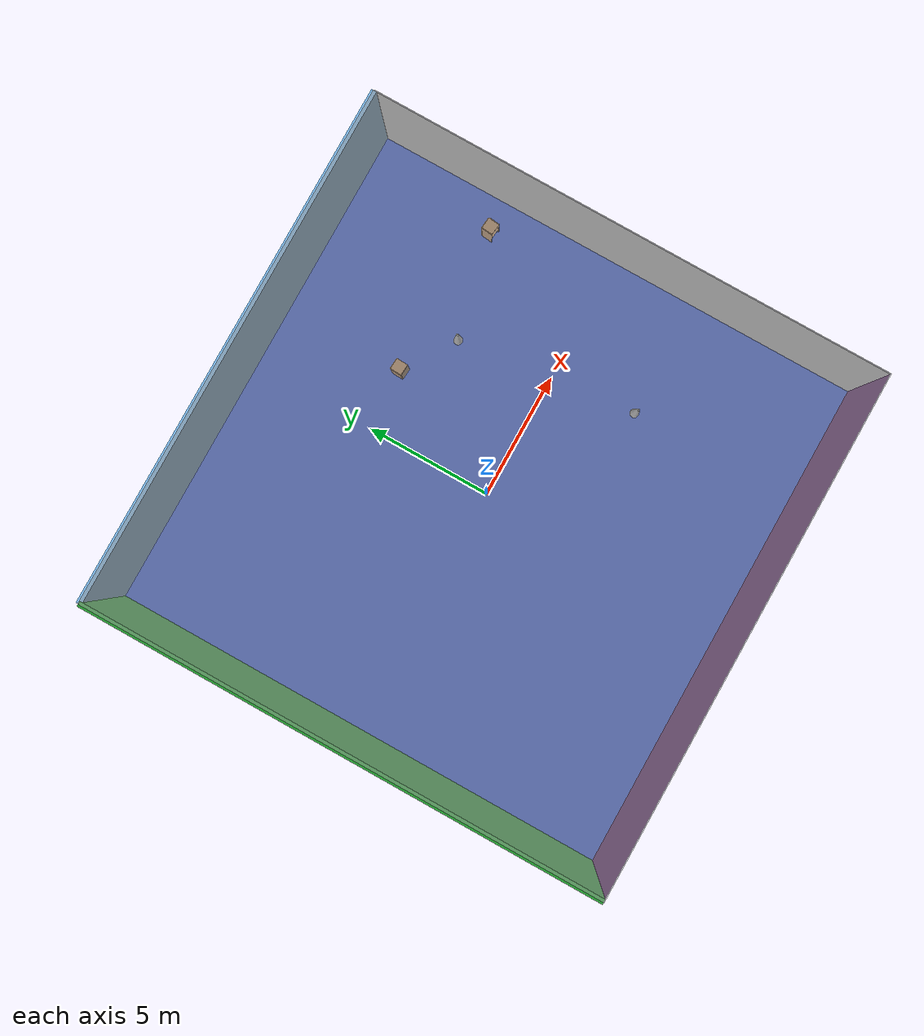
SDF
<sdf version="1.4">
 <world name="default">
  <physics type="ode">
   <max_step_size>0.001</max_step_size>
   <real_time_factor>1</real_time_factor>
   <real_time_update_rate>1000</real_time_update_rate>
   <gravity>0 0 -9.8</gravity>
  </physics>
  <scene><ambient>0.4 0.4 0.4 1</ambient><background>0.7 0.7 0.7 1</background><shadows>1</shadows></scene>
  <model name="Surrounding">
   <static>1</static>
   <link name="Ceiling">
    <collision name="Ceiling_Collision"><geometry><box><size>20 20 0.1</size></box></geometry></collision>
    <visual name="Ceiling_Visual">
     <geometry><box><size>20 20 0.1</size></box></geometry>
     <material>
      <script><uri>file://media/materials/scripts/gazebo.material</uri><name>Gazebo/GreyTransparent</name></script>
     </material>
    </visual>
    <pose>0 0 4.05 0 0 0</pose>
   </link>
   <link name="Wall_South">
    <collision name="Wall_South_Collision">
     <geometry><box><size>20 0 4</size></box></geometry>
     <pose>0 0 2 0 -0 0</pose>
    </collision>
    <visual name="Wall_South_Visual">
     <pose>0 0 2 0 -0 0</pose>
     <geometry><box><size>20 0 4</size></box></geometry>
     <material>
      <script><uri>file://media/materials/scripts/gazebo.material</uri><name>Gazebo/PurpleGlow</name></script>
     </material>
    </visual>
    <velocity_decay><linear>0</linear><angular>0</angular></velocity_decay>
    <pose>0 -10 0 0 -0 0</pose>
   </link>
   <link name="Wall_East">
    <collision name="Wall_21_Collision">
     <geometry><box><size>20 0 4</size></box></geometry>
     <pose>0 0 2 0 -0 0</pose>
    </collision>
    <visual name="Wall_21_Visual">
     <pose>0 0 2 0 -0 0</pose>
     <geometry><box><size>20 0 4</size></box></geometry>
     <material>
      <script><uri>file://media/materials/scripts/gazebo.material</uri><name>Gazebo/JointAnchor</name></script>
     </material>
    </visual>
    <velocity_decay><linear>0</linear><angular>0</angular></velocity_decay>
    <pose>10 0 0 0 -0 1.5708</pose>
   </link>
   <link name="Wall_North">
    <collision name="Wall_22_Collision">
     <geometry><box><size>20 0.2 4</size></box></geometry>
     <pose>0 0 2 0 -0 0</pose>
    </collision>
    <visual name="Wall_22_Visual">
     <pose>0 0 2 0 -0 0</pose>
     <geometry><box><size>20 0.2 4</size></box></geometry>
     <material>
      <script><uri>file://media/materials/scripts/gazebo.material</uri><name>Gazebo/SkyBlue</name></script>
     </material>
    </visual>
    <velocity_decay><linear>0</linear><angular>0</angular></velocity_decay>
    <pose>0 10 0 0 -0 0</pose>
   </link>
   <link name="Wall_West">
    <collision name="Wall_23_Collision">
     <geometry><box><size>20 0.2 4</size></box></geometry>
     <pose>0 0 2 0 -0 0</pose>
    </collision>
    <visual name="Wall_23_Visual">
     <pose>0 0 2 0 -0 0</pose>
     <geometry><box><size>20 0.2 4</size></box></geometry>
     <material>
      <script><uri>file://media/materials/scripts/gazebo.material</uri><name>Gazebo/Green</name></script>
     </material>
    </visual>
    <velocity_decay><linear>0</linear><angular>0</angular></velocity_decay>
    <pose>-10 0 0 0 0 -1.5708</pose>
   </link>
   <link name="Ground_link">
    <collision name="collision">
     <pose>0 0 .05 0 -0 0</pose>
     <geometry><box><size>20 20 0.1</size></box></geometry>
    </collision>
    <visual name="visual">
     <pose>0 0 .05 0 -0 0</pose>
     <geometry><box><size>20 20 0.1</size></box></geometry>
     <material>
      <script><uri>file://media/materials/scripts/gazebo.material</uri><name>Gazebo/BlueGlow</name></script>
     </material>
    </visual>
   </link>
   <static>1</static>
  </model>
  <spherical_coordinates>
   <surface_model>EARTH_WGS84</surface_model>
   <latitude_deg>0</latitude_deg>
   <longitude_deg>0</longitude_deg>
   <elevation>0</elevation>
   <heading_deg>0</heading_deg>
  </spherical_coordinates>
  <light name="lightball_0" type="diffuse">
   <diffuse>0.8 0.8 0.8 1</diffuse>
   <specular>0.2 0.2 0.2 1</specular>
   <attenuation>
    <range>100</range>
    <constant>0.7</constant>
    <linear>0.01</linear>
    <quadratic>0.001</quadratic>
   </attenuation>
   <direction>-0.5 0.1 -0.9</direction>
   <pose>-0.571490933094 6.2366848161 3.17068874883 0 0 0</pose>
  </light>
  <light name="lightball_1" type="diffuse">
   <diffuse>0.8 0.8 0.8 1</diffuse>
   <specular>0.2 0.2 0.2 1</specular>
   <attenuation>
    <range>100</range>
    <constant>0.7</constant>
    <linear>0.01</linear>
    <quadratic>0.001</quadratic>
   </attenuation>
   <direction>-0.5 0.1 -0.9</direction>
   <pose>-9.2775111917 -4.0624288436 1.20085991446 0 0 0</pose>
  </light>
  <light name="lightball_2" type="diffuse">
   <diffuse>0.8 0.8 0.8 1</diffuse>
   <specular>0.2 0.2 0.2 1</specular>
   <attenuation>
    <range>100</range>
    <constant>0.7</constant>
    <linear>0.01</linear>
    <quadratic>0.001</quadratic>
   </attenuation>
   <direction>-0.5 0.1 -0.9</direction>
   <pose>8.8265423114 -6.14874824718 1.43915006147 0 0 0</pose>
  </light>
  <light name="lightball_3" type="diffuse">
   <diffuse>0.8 0.8 0.8 1</diffuse>
   <specular>0.2 0.2 0.2 1</specular>
   <attenuation>
    <range>100</range>
    <constant>0.7</constant>
    <linear>0.01</linear>
    <quadratic>0.001</quadratic>
   </attenuation>
   <direction>-0.5 0.1 -0.9</direction>
   <pose>7.44857844995 -7.25183162307 0.704656676365 0 0 0</pose>
  </light>
  <light name="lightball_4" type="diffuse">
   <diffuse>0.8 0.8 0.8 1</diffuse>
   <specular>0.2 0.2 0.2 1</specular>
   <attenuation>
    <range>100</range>
    <constant>0.7</constant>
    <linear>0.01</linear>
    <quadratic>0.001</quadratic>
   </attenuation>
   <direction>-0.5 0.1 -0.9</direction>
   <pose>-8.87787953298 1.86556669602 1.70900282741 0 0 0</pose>
  </light>
  <light name="lightball_5" type="diffuse">
   <diffuse>0.8 0.8 0.8 1</diffuse>
   <specular>0.2 0.2 0.2 1</specular>
   <attenuation>
    <range>100</range>
    <constant>0.7</constant>
    <linear>0.01</linear>
    <quadratic>0.001</quadratic>
   </attenuation>
   <direction>-0.5 0.1 -0.9</direction>
   <pose>-4.9646399201 -8.98602008651 1.04122736537 0 0 0</pose>
  </light>
  <light name="lightball_6" type="diffuse">
   <diffuse>0.8 0.8 0.8 1</diffuse>
   <specular>0.2 0.2 0.2 1</specular>
   <attenuation>
    <range>100</range>
    <constant>0.7</constant>
    <linear>0.01</linear>
    <quadratic>0.001</quadratic>
   </attenuation>
   <direction>-0.5 0.1 -0.9</direction>
   <pose>-2.81846743924 -6.41172833022 3.18214804808 0 0 0</pose>
  </light>
  <light name="lightball_7" type="diffuse">
   <diffuse>0.8 0.8 0.8 1</diffuse>
   <specular>0.2 0.2 0.2 1</specular>
   <attenuation>
    <range>100</range>
    <constant>0.7</constant>
    <linear>0.01</linear>
    <quadratic>0.001</quadratic>
   </attenuation>
   <direction>-0.5 0.1 -0.9</direction>
   <pose>-2.55376670777 -9.01530387715 2.46134370721 0 0 0</pose>
  </light>
  <light name="lightball_8" type="diffuse">
   <diffuse>0.8 0.8 0.8 1</diffuse>
   <specular>0.2 0.2 0.2 1</specular>
   <attenuation>
    <range>100</range>
    <constant>0.7</constant>
    <linear>0.01</linear>
    <quadratic>0.001</quadratic>
   </attenuation>
   <direction>-0.5 0.1 -0.9</direction>
   <pose>5.89135170989 -3.22941636117 1.71206644546 0 0 0</pose>
  </light>
  <light name="lightball_9" type="diffuse">
   <diffuse>0.8 0.8 0.8 1</diffuse>
   <specular>0.2 0.2 0.2 1</specular>
   <attenuation>
    <range>100</range>
    <constant>0.7</constant>
    <linear>0.01</linear>
    <quadratic>0.001</quadratic>
   </attenuation>
   <direction>-0.5 0.1 -0.9</direction>
   <pose>-6.11829974011 -4.16902780651 3.51582654423 0 0 0</pose>
  </light>
  <light name="lightball_10" type="diffuse">
   <diffuse>0.8 0.8 0.8 1</diffuse>
   <specular>0.2 0.2 0.2 1</specular>
   <attenuation>
    <range>100</range>
    <constant>0.7</constant>
    <linear>0.01</linear>
    <quadratic>0.001</quadratic>
   </attenuation>
   <direction>-0.5 0.1 -0.9</direction>
   <pose>-5.15587036674 -6.3895202132 3.34593212743 0 0 0</pose>
  </light>
  <include><uri>model://cabinet</uri><pose>2.4755113069 5.07105062022 0 0 0 3.07586659351</pose></include>
  <include>
   <uri>model://construction_cone</uri>
   <pose>5.35483896127 -3.3785227587 0 0 0 0.326998264542</pose>
  </include>
  <include>
   <uri>model://construction_cone</uri>
   <pose>4.53524720255 3.75603689063 0 0 0 2.46893390934</pose>
  </include>
  <include><uri>model://cabinet</uri><pose>8.69035497955 4.68572040934 0 0 0 1.4632075257</pose></include>
 </world>
</sdf>

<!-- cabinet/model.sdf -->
<sdf version="1.5">
  <model name="cabinet">
    <static>true</static>
    <link name="cabinet_bottom_plate">
      <inertial>
        <pose>0 0 -1 0 0 0</pose>
        <inertia>
          <ixx>2.050000</ixx>
          <ixy>0</ixy>
          <ixz>0</ixz>
          <iyy>2.050000</iyy>
          <iyz>0</iyz>
          <izz>2.050000</izz>
        </inertia>
        <mass>25.000000</mass>
      </inertial>
      <collision name="cabinet_bottom_plate_geom">
        <pose>0 0 0.010000 0 0 0</pose>
        <geometry>
          <box>
            <size>0.450000 0.450000 0.020000</size>
          </box>
        </geometry>
      </collision>
      <visual name="cabinet_bottom_plate_geom_visual">
        <pose>0 0 0.010000 0 0 0</pose>
        <geometry>
          <box>
            <size>0.450000 0.450000 0.020000</size>
          </box>
        </geometry>
        <material>
          <script>
            <uri>model://media/materials/scripts/gazebo.material</uri>
            <name>Gazebo/Wood</name>
          </script>
        </material>
      </visual>
      <collision name="cabinet_bottom_plate_geom_cabinet_back_plate">
        <pose>0.235000 0 0.510000 0 0 0</pose>
        <geometry>
          <box>
            <size>0.020000 0.450000 1.020000</size>
          </box>
        </geometry>
      </collision>
      <visual name="cabinet_bottom_plate_geom_cabinet_back_plate_visual">
        <pose>0.235000 0 0.510000 0 0 0</pose>
        <geometry>
          <box>
            <size>0.020000 0.450000 1.020000</size>
          </box>
        </geometry>
        <material>
          <script>
            <uri>model://media/materials/scripts/gazebo.material</uri>
            <name>Gazebo/Wood</name>
          </script>
        </material>
      </visual>
      <collision name="cabinet_bottom_plate_geom_cabinet_left_plate">
        <pose>0 0.235000 0.510000 0 0 0</pose>
        <geometry>
          <box>
            <size>0.450000 0.020000 1.020000</size>
          </box>
        </geometry>
      </collision>
      <visual name="cabinet_bottom_plate_geom_cabinet_left_plate_visual">
        <pose>0 0.235000 0.510000 0 0 0</pose>
        <geometry>
          <box>
            <size>0.450000 0.020000 1.020000</size>
          </box>
        </geometry>
        <material>
          <script>
            <uri>model://media/materials/scripts/gazebo.material</uri>
            <name>Gazebo/Wood</name>
          </script>
        </material>
      </visual>
      <collision name="cabinet_bottom_plate_geom_cabinet_middle_plate">
        <pose>0 0 0.510000 0 0 0</pose>
        <geometry>
          <box>
            <size>0.450000 0.450000 0.020000</size>
          </box>
        </geometry>
      </collision>
      <visual name="cabinet_bottom_plate_geom_cabinet_middle_plate_visual">
        <pose>0 0 0.510000 0 0 0</pose>
        <geometry>
          <box>
            <size>0.450000 0.450000 0.020000</size>
          </box>
        </geometry>
        <material>
          <script>
            <uri>model://media/materials/scripts/gazebo.material</uri>
            <name>Gazebo/Wood</name>
          </script>
        </material>
      </visual>
      <collision name="cabinet_bottom_plate_geom_cabinet_right_plate">
        <pose>0 -0.235000 0.510000 0 0 0</pose>
        <geometry>
          <box>
            <size>0.450000 0.020000 1.020000</size>
          </box>
        </geometry>
      </collision>
      <visual name="cabinet_bottom_plate_geom_cabinet_right_plate_visual">
        <pose>0 -0.235000 0.510000 0 0 0</pose>
        <geometry>
          <box>
            <size>0.450000 0.020000 1.020000</size>
          </box>
        </geometry>
        <material>
          <script>
            <uri>model://media/materials/scripts/gazebo.material</uri>
            <name>Gazebo/Wood</name>
          </script>
        </material>
      </visual>
      <collision name="cabinet_bottom_plate_geom_cabinet_top_plate">
        <pose>0 0 1.010000 0 0 0</pose>
        <geometry>
          <box>
            <size>0.450000 0.450000 0.020000</size>
          </box>
        </geometry>
      </collision>
      <visual name="cabinet_bottom_plate_geom_cabinet_top_plate_visual">
        <pose>0 0 1.010000 0 0 0</pose>
        <geometry>
          <box>
            <size>0.450000 0.450000 0.020000</size>
          </box>
        </geometry>
        <material>
          <script>
            <uri>model://media/materials/scripts/gazebo.material</uri>
            <name>Gazebo/Wood</name>
          </script>
        </material>
      </visual>
    </link>
  </model>
</sdf>

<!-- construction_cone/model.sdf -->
<sdf version="1.5">
  <model name="Construction Cone">
    <link name="link">
      <collision name="collision">
        <geometry>
          <mesh>
            <scale>10 10 10</scale>
            <uri>file://isr-testbed/construction_cone/meshes/construction_cone.dae</uri>
          </mesh>
        </geometry>
      </collision>
      <visual name="visual">
        <geometry>
          <mesh>
            <scale>10 10 10</scale>
            <uri>file://isr-testbed/construction_cone/meshes/construction_cone.dae</uri>
          </mesh>
        </geometry>
      </visual>
    </link>
  </model>
</sdf>
